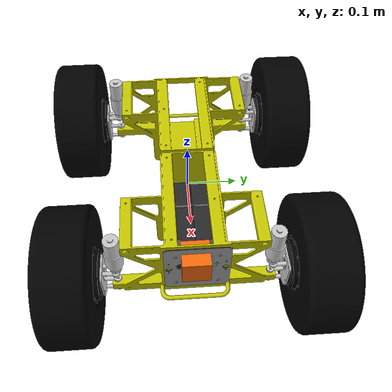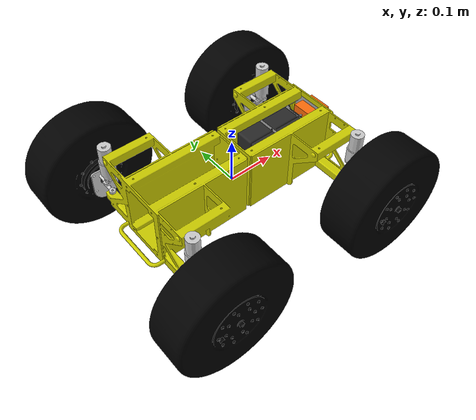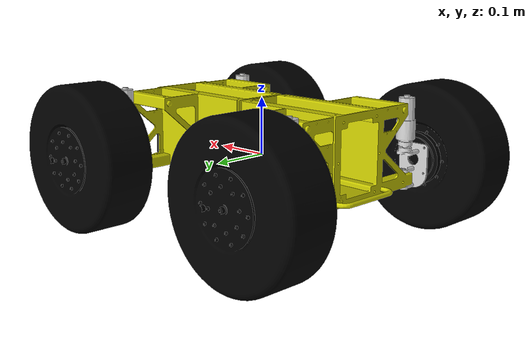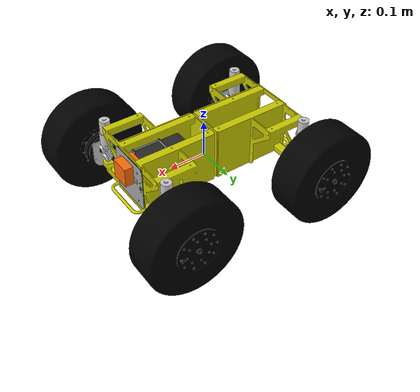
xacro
<?xml version="1.0" encoding="UTF-8"?>
<robot xmlns:xacro="http://www.ros.org/wiki/xacro" name="earth_rover">

	<xacro:property name="M_PI" value="3.1415926535897931" />

	<!-- measured mass of tyre and hub outer part: 1.238g -->
	<!-- measured mass of base block and two steering blocks: 1550 g -->
	<!-- measured mass of battery block: 2401 g -->
	<!-- measured mass of ankle motor: 208 g -->

	<material name="yellow">
		<color rgba=".8 .8 0 1" />
	</material>

	<material name="black">
		<color rgba="0 0 0 1" />
	</material>

	<material name="green">
		<color rgba="0 0.8 0 1" />
	</material>

	<material name="silver">
		<color rgba=".8 .8 .8 1" />
	</material>

  <xacro:include filename="base.urdf.xacro" />
  <xacro:include filename="wheels.urdf.xacro" />

  <!-- link of convenience, makes things more symmetrical -->
	<link name="base_link"/>

	<!-- gazebo doesn't recognise links without mass, but KDL doesn't
	     like the ba link to have inertia, so we have this silly
	     situation of a dummy inertia link for a dummy link... -->
	<link name="base_link_inertia">
		<inertial>
			<!-- mass needed for gazebo to recognise link -->
			<mass value="1000.00" />
			<inertia ixx="1" iyy="1" izz="1" ixy="0" ixz="0" iyz="0" />
		</inertial>
	</link>

	<joint name="base_link_inertia_joint" type="fixed">
		<parent link="base_link" />
		<child link="base_link_inertia" />
	</joint>

	<base_block name="front_base" parent="base_link" reflect="1" colour="yellow" />
	<base_block name="back_base" parent="base_link" reflect="-1" colour="yellow" />

	<xacro:wheel name="front_left" parent="front_base_link" reflect="1" reflect_y="1" />
	<xacro:wheel name="front_right" parent="front_base_link" reflect="-1" reflect_y="1" />
	<xacro:wheel name="back_left" parent="back_base_link" reflect="1" reflect_y="-1" />
	<xacro:wheel name="back_right" parent="back_base_link" reflect="-1" reflect_y="-1" />

	<!-- battery block -->
	<link name="battery_block_link">
		<inertial>
			<!-- from Solid Edge "Battery Block V2 - 22Ah - 24V.asm" -->
			<origin xyz="-0.09568 0 0.00658" />
			<mass value="2.401" />
			<inertia ixx="0.002" iyy="-0.001" izz="-0.001" ixy="0" ixz="0" iyz="0" />
		</inertial>
		<visual>
			<geometry>
				<mesh filename="package://earth_rover_description/meshes/battery_block.dae" />
			</geometry>
		</visual>
	</link>

	<gazebo reference="battery_block_link">
		<selfCollide>false</selfCollide>
	</gazebo>

	<joint name="battery_block_joint" type="fixed">
		<parent link="front_base_link" />
		<child link="battery_block_link" />
		<origin xyz="${base_x/2} 0 0" />
	</joint>

  <xacro:include filename="$(find sensor_sim_gazebo)/urdf/sensor.xacro"/>

  <gazebo>
      <plugin name="gazebo_ros_gps" filename="libhector_gazebo_ros_gps.so">
          <updateRate>4.0</updateRate>
          <bodyName>sensor</bodyName>
          <frameId>base_link</frameId>
          <topicName>/gps/fix</topicName>
          <velocityTopicName>/gps/fix_velocity</velocityTopicName>
          <referenceLatitude>40.846916</referenceLatitude>
          <referenceLongitude>14.251929</referenceLongitude>
          <referenceHeading>90</referenceHeading>
          <referenceAltitude>10</referenceAltitude>
          <offset>0 0 0</offset>
          <drift>0.0 0.0 0.0</drift>
          <gaussianNoise>0.0 0.0 0.0</gaussianNoise>
          <velocityDrift>0.001 0.001 0.001</velocityDrift>
          <velocityGaussianNoise>0.5 0.5 0.5</velocityGaussianNoise>
      </plugin>
  </gazebo>

  <gazebo>
    <plugin name="imu_plugin" filename="libgazebo_ros_imu.so">
      <alwaysOn>true</alwaysOn>
      <bodyName>sensor</bodyName>
      <topicName>imu</topicName>
      <serviceName>imu_service</serviceName>
      <gaussianNoise>0.0</gaussianNoise>
      <updateRate>20.0</updateRate>
    </plugin>
  </gazebo>

	<!-- gazebo tags -->

	<gazebo>
		<plugin name="gazebo_ros_control" filename="libgazebo_ros_control.so">
			<robotNamespace>/</robotNamespace>
		</plugin>
	</gazebo>

</robot>

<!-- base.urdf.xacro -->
<robot xmlns:xacro="http://www.ros.org/wiki/xacro">

	<xacro:property name="base_x" value=".2148" />
	<xacro:property name="base_y" value=".106" />
	<xacro:property name="base_z" value=".142" />

	<xacro:property name="shoulder_x" value=".109" />
	<xacro:property name="shoulder_y" value=".26" />

	<xacro:property name="hinge_offset" value=".029" />

	<xacro:macro name="base_block" params="name parent reflect colour">
		<link name="${name}_link">
			<inertial>
				<!-- from solid edge base_block.asm -->
				<origin xyz="0.01925 0 -0.00534" />
				<mass value="1.072" />
				<inertia ixx="0.008" iyy="0.011" izz="0.013" ixy="0.000" ixz="0.000" iyz="0.000" />
			</inertial>
			<visual>
				<origin rpy="0 0 ${M_PI if reflect == -1 else 0}" />
				<geometry>
					<mesh filename="package://earth_rover_description/meshes/base_block.dae" />
				</geometry>
				<material name="${colour}" />
			</visual>
			<collision>
				<geometry>
					<box size="${base_x} ${base_y} ${base_z}" />
				</geometry>
			</collision>
			<collision>
				<origin xyz="${reflect*(base_x/2 - shoulder_x/2)} 0 0" />
				<geometry>
					<box size="${shoulder_x} ${shoulder_y} ${base_z}" />
				</geometry>
			</collision>
			<collision>
				<!-- handle -->
				<origin xyz="${reflect*(base_x/2 + 0.015)} 0 -.06" />
				<geometry>
					<box size=".03 .128 .01" />
				</geometry>
			</collision>
		</link>

		<gazebo reference="${name}_link">
			<selfCollide>false</selfCollide>
		</gazebo>

		<joint name="${name}_hinge" type="fixed">
			<parent link="${parent}" />
			<child link="${name}_link" />
			<origin xyz="${reflect*base_x/2} 0 ${hinge_offset}" />
		</joint>
	</xacro:macro>

</robot>

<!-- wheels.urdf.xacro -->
<robot xmlns:xacro="http://www.ros.org/wiki/xacro">

	<xacro:property name="angle_limit_cw" value="${M_PI/4}" />
	<xacro:property name="angle_limit_ccw" value="${M_PI/4}" />

	<xacro:property name="ankle_offset_x" value="0.0914" />
	<xacro:property name="ankle_offset_y" value="0.140" />
	<xacro:property name="ankle_offset_z" value="0.051" />

	<xacro:property name="wheel_offset_y" value=".027" />
	<xacro:property name="wheel_offset_z" value=".021" />

	<xacro:property name="wheel_radius" value=".12" />
	<xacro:property name="wheel_inner_radius" value=".045" />
	<xacro:property name="wheel_length" value=".09" />
	<xacro:property name="wheel_mass" value="1.24" />
	<!-- from standard equation for thick-walled cylinder -->
	<xacro:property name="wheel_Ixx_Iyy" value="${wheel_mass*(3*(wheel_radius**2 + wheel_inner_radius**2) + wheel_length**2)/12}" />
	<xacro:property name="wheel_Izz" value="${wheel_mass*(wheel_radius**2 + wheel_inner_radius**2)/2}" />

	<xacro:macro name="wheel" params="name parent reflect reflect_y">
		<link name="${name}_ankle">
			<inertial>
				<!-- from Solid Edge "Steering Block.asm" -->
				<origin xyz="0 ${reflect*(-wheel_offset_y + 0.02493)} ${wheel_offset_z + 0.05588}" />
				<mass value="0.271" />
				<inertia ixx="0.01" iyy="0.01" izz="0.01" ixy="0" ixz="0" iyz="0" />
			</inertial>
			<visual>
				<origin xyz="0 ${reflect*wheel_offset_y} ${wheel_offset_z}" rpy="0 0 ${M_PI if reflect == -1 else 0}"/>
				<geometry>
					<mesh filename="package://earth_rover_description/meshes/steering_block.dae" />
				</geometry>
				<material name="silver"/>
			</visual>
			<collision>
				<origin xyz="0 0 ${ankle_offset_z}" />
				<geometry>
					<cylinder radius="0.016" length=".18"/>
				</geometry>
			</collision>
		</link>

		<gazebo reference="${name}_ankle">
			<selfCollide>false</selfCollide>
		</gazebo>

		<link name="${name}_wheel">
			<inertial>
				<!-- based on thick-walled cylinder -->
				<origin xyz="0 ${reflect*wheel_length/2} 0" rpy="${M_PI/2} 0 0" />
				<mass value="1.24" />
				<inertia ixx="${wheel_Ixx_Iyy}" iyy="${wheel_Ixx_Iyy}"  izz="${wheel_Izz}" ixy="0.0" ixz="0.0" iyz="0.0" />
			</inertial>
			<visual>
				<xacro:if value="${reflect == -1}">
					<origin rpy="0 0 ${M_PI}" />
				</xacro:if>
				<geometry>
					<mesh filename="package://earth_rover_description/meshes/wheel.dae" />
				</geometry>
				<material name="black" />
			</visual>
			<collision>
				<origin xyz="0 ${reflect*wheel_length/2} 0" rpy="${M_PI/2} 0 0" />
				<geometry>
					<cylinder radius="${wheel_radius}" length="${wheel_length}" />
				</geometry>
			</collision>
		</link>

		<gazebo reference="${name}_wheel">
			<material>Gazebo/DarkGrey</material>
		</gazebo>

		<!-- Steering with transmissions for gazebo -->
    <joint name="${name}_steering_joint" type="revolute">
      <parent link="${parent}" />
      <child link="${name}_ankle" />
      <axis xyz="0 0 1" />
      <origin xyz="${reflect_y*ankle_offset_x} ${reflect*ankle_offset_y} -${ankle_offset_z}" />
      <limit lower="-${angle_limit_ccw}" upper="${angle_limit_cw}" effort="7" velocity="15" />
      <!-- guesses -->
    </joint>

	 <joint name="${name}_wheel_joint" type="continuous">
      <parent link="${name}_ankle" />
      <child link="${name}_wheel" />
      <axis xyz="0 1 0" />
      <origin xyz="0 ${reflect*wheel_offset_y} ${wheel_offset_z}" />
    </joint>
    <!-- Power wheels -->

    <transmission name="${name}_wheel_transmission" type="SimpleTransmission">
			<type>transmission_interface/SimpleTransmission</type>
			<actuator name="${name}_wheel_motor" />
			<joint name="${name}_wheel_joint">
				<hardwareInterface>hardware_interface/VelocityJointInterface</hardwareInterface>
			</joint>
		</transmission>

  <transmission name="${name}_steering_trans" type="SimpleTransmission">
			<type>transmission_interface/SimpleTransmission</type>
			<actuator name="${name}_steering_motor" />
			<joint name="${name}_steering_joint">
				<hardwareInterface>hardware_interface/PositionJointInterface</hardwareInterface>
			</joint>
		</transmission>

	</xacro:macro>
</robot>

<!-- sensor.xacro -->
<robot name="sensor" xmlns:xacro="http://www.ros.org/wiki/xacro">
  <xacro:property name="height1" value="0.05" />
  <xacro:property name="width" value="0.05" />
   <joint name="fixed" type="fixed">
    <parent link="battery_block_link"/>
    <child link="sensor"/>
  </joint>

 <!-- Base Link -->
  <link name="sensor">
    <collision>
      <origin xyz="0 0 ${height1/2}" rpy="0 0 0"/>
      <geometry>
        <box size="${width} ${width} ${height1}"/>
      </geometry>
    </collision>

    <visual>
      <origin xyz="0 0 ${height1/2}" rpy="0 0 0"/>
      <geometry>
        <box size="${width} ${width} ${height1}"/>
      </geometry>
      <material name="orange"/>
    </visual>

    <inertial>
      <origin xyz="0 0 1" rpy="0 0 0"/>
      <mass value="1"/>
      <inertia
        ixx="1.0" ixy="0.0" ixz="0.0"
        iyy="1.0" iyz="0.0"
        izz="1.0"/>
    </inertial>
  </link>

  <material name="orange">
    <color rgba="${255/255} ${108/255} ${10/255} 1.0"/>
  </material>
 <gazebo reference="sensor">
    <material>Gazebo/Orange</material>
  </gazebo>

</robot>
